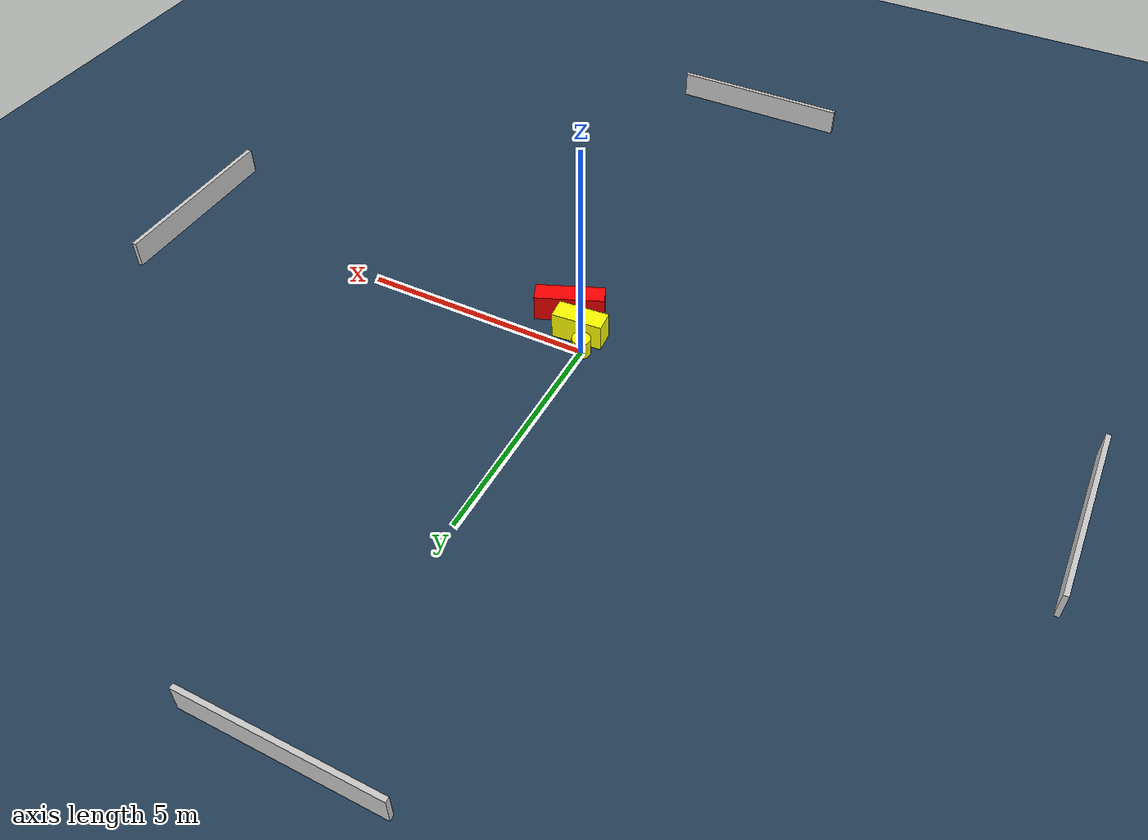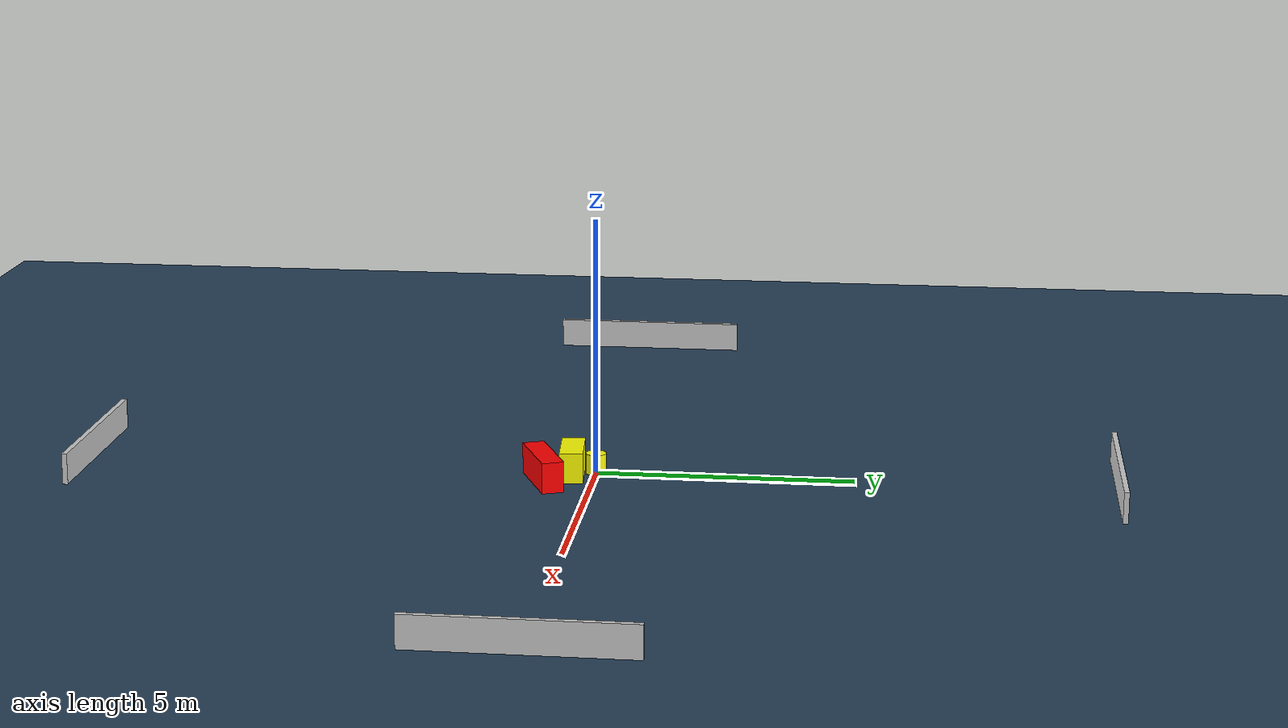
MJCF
<?xml version="1.0" ?>
<mujoco model="generated_environment">
  <option timestep="0.01" integrator="RK4" cone="elliptic"/>
  <default>
    <geom density="1"/>
  </default>
  <asset>
    <texture builtin="gradient" height="3072" name="skybox" rgb1="0.3 0.5 0.7" rgb2="0 0 0" type="skybox" width="512"/>
    <texture builtin="checker" height="300" name="groundplane" rgb1="0.2 0.3 0.4" rgb2="0.1 0.2 0.3" type="2d" width="300"/>
    <material name="groundplane" reflectance="0.2" texrepeat="5 5" texture="groundplane"/>
  </asset>
  <worldbody>
    <light dir="0 0 -1" directional="true" pos="0 0 1.5"/>
    <geom condim="3" friction="0.5 0.005 0.001" material="groundplane" name="floor" pos="0 0 0" size="0 0 0.05" type="plane"/>
    <body name="walls">
      <geom name="wall_1" condim="4" pos="-10.0 0.0 0.3" rgba="0.800000011920929 0.800000011920929 0.800000011920929 1.0" size="0.05 2.0 0.3" type="box"/>
      <geom name="wall_2" condim="4" pos="10.0 0.0 0.3" rgba="0.800000011920929 0.800000011920929 0.800000011920929 1.0" size="0.05 2.0 0.3" type="box"/>
      <geom name="wall_3" condim="4" pos="0.0 -10.0 0.3" rgba="0.800000011920929 0.800000011920929 0.800000011920929 1.0" size="2.0 0.05 0.3" type="box"/>
      <geom name="wall_4" condim="4" pos="0.0 10.0 0.3" rgba="0.800000011920929 0.800000011920929 0.800000011920929 1.0" size="2.0 0.05 0.3" type="box"/>
    </body>
    <body name="robot">
      <joint name="joint_x" type="slide" pos="0 0 0" axis="1 0 0"/>
      <joint name="joint_y" type="slide" pos="0 0 0" axis="0 1 0"/>
      <geom name="robot" type="cylinder" pos="0.0 0.0 0.2" size="0.2 0.2 0.0" mass="5.0" friction="1.0 0.005 0.0001" condim="4" rgba="1.0 1.0 0.0 1.0"/>
    </body>
    <body name="obstacle_1_movable">
      <geom name="obstacle_1_movable" condim="4" pos="0.24453100069097372 -0.4344834027670613 0.3" euler="0 0 274.4828443703001" friction="0.0 0.005 0.001" rgba="1.0 1.0 0.0 1.0" size="0.22701206812090516 0.5468226463093313 0.3" type="box" mass="0.1"/>
      <joint type="free"/>
    </body>
    <body name="obstacle_2_static">
      <geom name="obstacle_2_static" condim="4" pos="0.7468243882105193 -0.9341621304629302 0.3" euler="0 0 112.74633323584038" friction="0.0 0.005 0.001" rgba="1.0 0.0 0.0 1.0" size="0.21410562045314002 0.7396867142453909 0.3" type="box"/>
    </body>
  </worldbody>
  <actuator>
    <motor name="actuator_x" joint="joint_x" gear="1" ctrlrange="-1 1"/>
    <motor name="actuator_y" joint="joint_y" gear="1" ctrlrange="-1 1"/>
  </actuator>
</mujoco>
